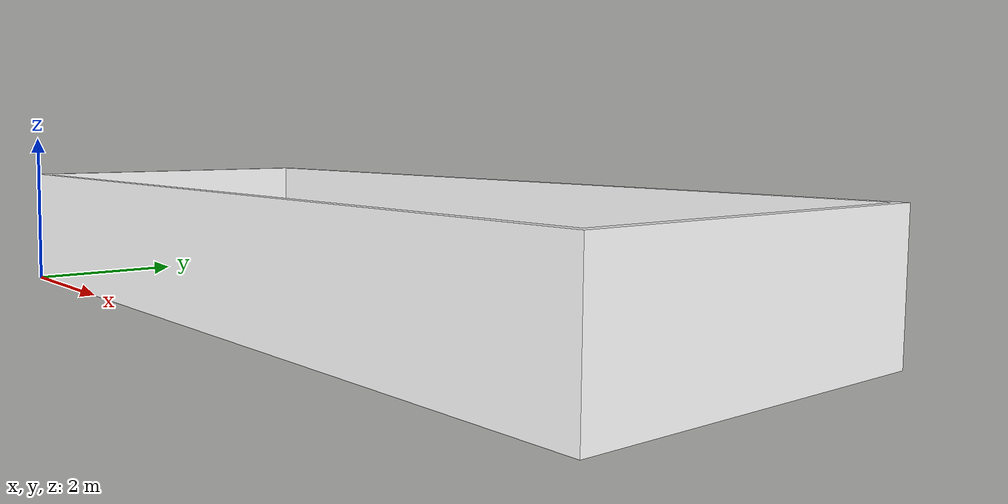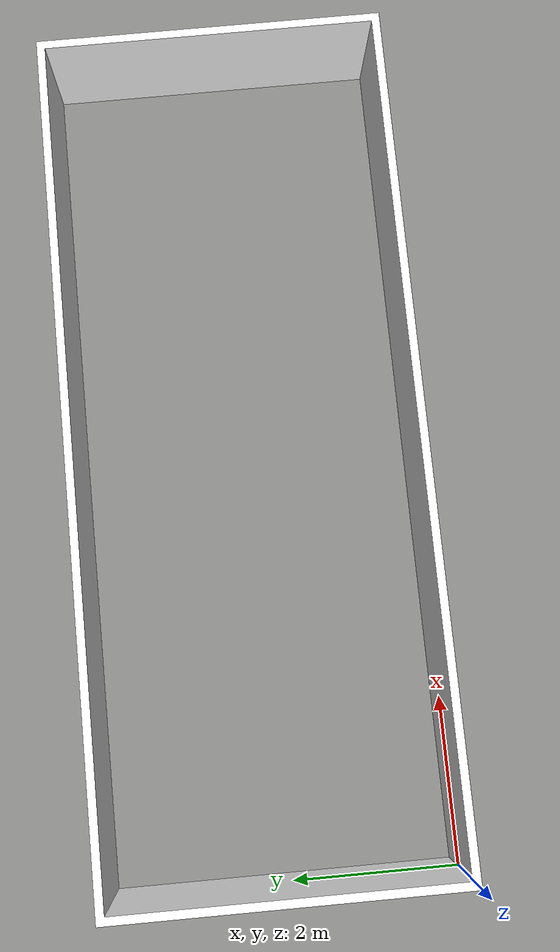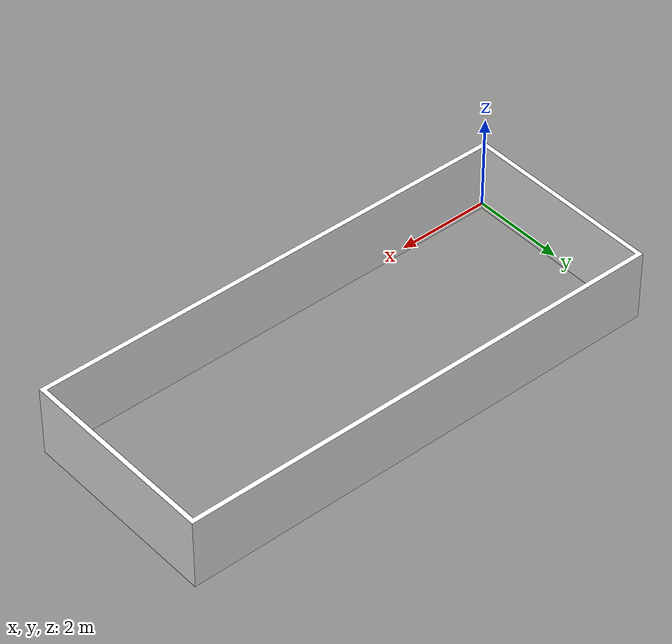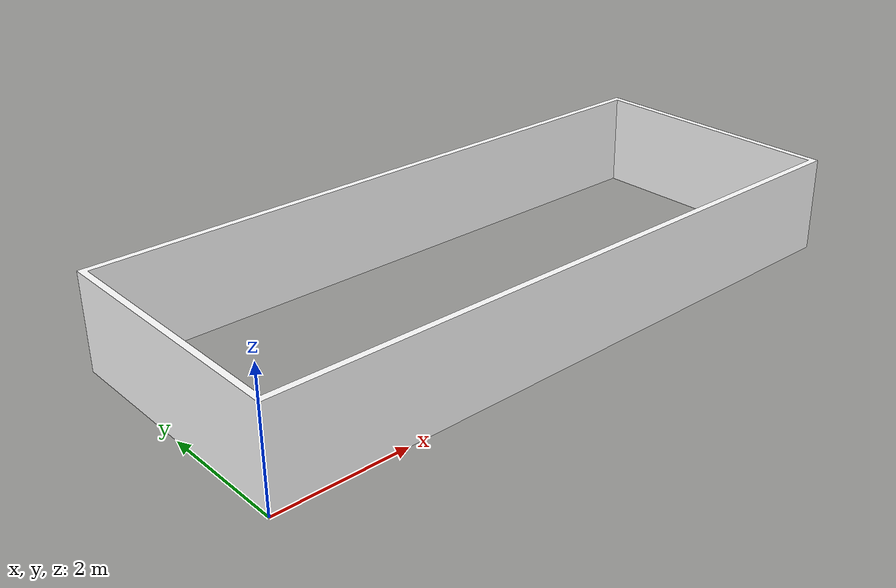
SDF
<?xml version="1.0" ?>
<sdf version="1.2">
  <model name="room_closed_10m_4m">
    <static>true</static>
    <pose>0 0 0 0 0 0</pose>
    <link name="walls">
      <collision name="collision">
        <geometry>
          <mesh>
            <uri>model://room_closed_10m_4m/meshes/free_space_10m_4m.dae</uri>
          </mesh>
        </geometry>
      </collision>
      <visual name="visual">
        <geometry>
          <mesh>
            <uri>model://room_closed_10m_4m/meshes/free_space_10m_4m.dae</uri>
          </mesh>
        </geometry>
        <cast_shadows>false</cast_shadows>
      </visual>
    </link>
  </model>
</sdf>
